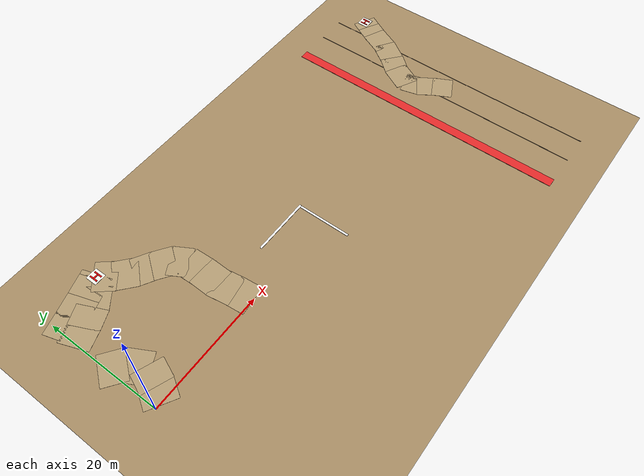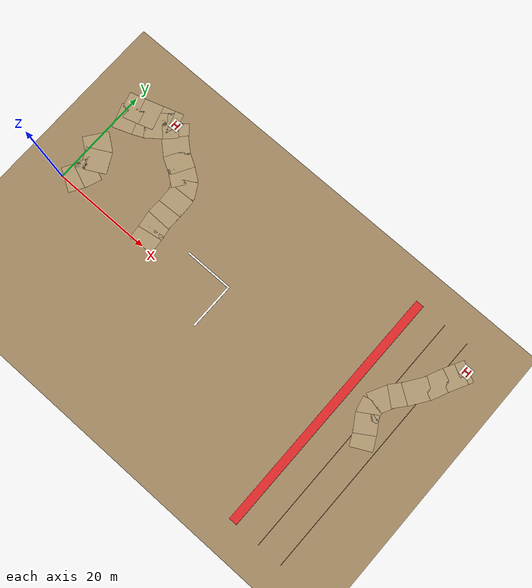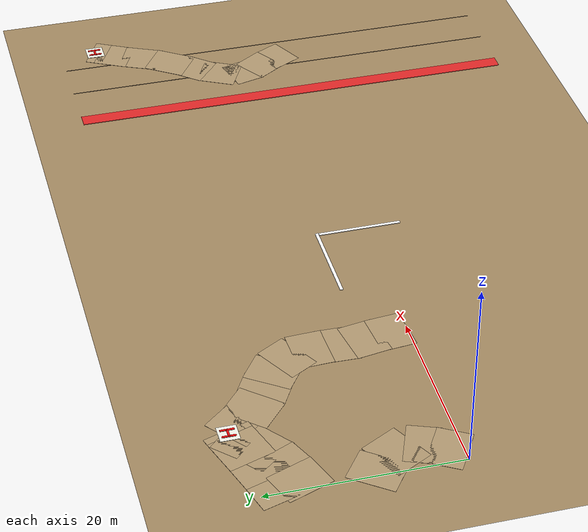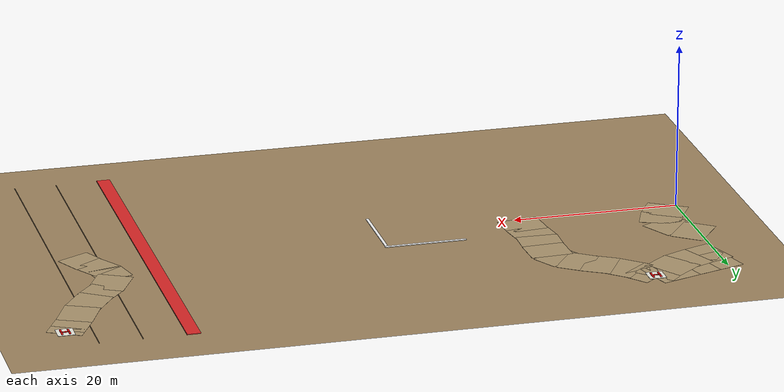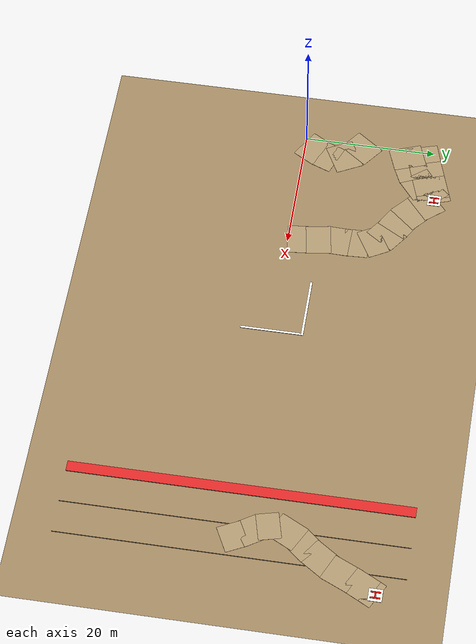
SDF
<sdf version="1.6">
 <world name="navitas_arena">
  <model name="ground_plane">
   <static>true</static>
   <link name="link">
    <collision name="collision">
     <geometry><plane><normal>0 0 1</normal><size>400 400</size></plane></geometry>
     <surface><friction><ode><mu>0.800</mu><mu2>0.800</mu2></ode></friction></surface>
    </collision>
    <visual name="visual">
     <cast_shadows>false</cast_shadows>
     <geometry><plane><normal>0 0 1</normal><size>400 400</size></plane></geometry>
     <material>
      <ambient>0.62 0.52 0.37 1</ambient>
      <diffuse>0.62 0.52 0.37 1</diffuse>
      <specular>0.04 0.04 0.04 1</specular>
     </material>
    </visual>
   </link>
  </model>
  <model name="landing_border_n">
   <static>true</static>
   <pose>32.000 4.700 0.080 0 0 0.000</pose>
   <link name="link">
    <collision name="col"><geometry><box><size>9.800 0.350 0.080</size></box></geometry></collision>
    <visual name="vis">
     <geometry><box><size>9.800 0.350 0.080</size></box></geometry>
     <material>
      <ambient>0.95 0.95 0.95 1</ambient>
      <diffuse>0.95 0.95 0.95 1</diffuse>
      <specular>0.04 0.04 0.04 1</specular>
     </material>
    </visual>
   </link>
  </model>
  <model name="landing_border_e">
   <static>true</static>
   <pose>36.700 0.000 0.080 0 0 0.000</pose>
   <link name="link">
    <collision name="col"><geometry><box><size>0.350 9.000 0.080</size></box></geometry></collision>
    <visual name="vis">
     <geometry><box><size>0.350 9.000 0.080</size></box></geometry>
     <material>
      <ambient>0.95 0.95 0.95 1</ambient>
      <diffuse>0.95 0.95 0.95 1</diffuse>
      <specular>0.04 0.04 0.04 1</specular>
     </material>
    </visual>
   </link>
  </model>
  <model name="road_orta_1_23">
   <static>true</static>
   <pose>0.905 18.411 0.040 0 0 0.291</pose>
   <link name="link">
    <collision name="col"><geometry><box><size>4.097 5.000 0.020</size></box></geometry></collision>
    <visual name="vis">
     <geometry><box><size>4.097 5.000 0.020</size></box></geometry>
     <material>
      <ambient>0.67 0.58 0.43 1</ambient>
      <diffuse>0.67 0.58 0.43 1</diffuse>
      <specular>0.04 0.04 0.04 1</specular>
     </material>
    </visual>
   </link>
  </model>
  <model name="road_orta_1_24">
   <static>true</static>
   <pose>3.800 19.305 0.040 0 0 0.308</pose>
   <link name="link">
    <collision name="col"><geometry><box><size>3.763 5.000 0.020</size></box></geometry></collision>
    <visual name="vis">
     <geometry><box><size>3.763 5.000 0.020</size></box></geometry>
     <material>
      <ambient>0.67 0.58 0.43 1</ambient>
      <diffuse>0.67 0.58 0.43 1</diffuse>
      <specular>0.04 0.04 0.04 1</specular>
     </material>
    </visual>
   </link>
  </model>
  <model name="road_orta_1_25">
   <static>true</static>
   <pose>6.735 20.255 0.040 0 0 0.317</pose>
   <link name="link">
    <collision name="col"><geometry><box><size>4.207 5.000 0.020</size></box></geometry></collision>
    <visual name="vis">
     <geometry><box><size>4.207 5.000 0.020</size></box></geometry>
     <material>
      <ambient>0.67 0.58 0.43 1</ambient>
      <diffuse>0.67 0.58 0.43 1</diffuse>
      <specular>0.04 0.04 0.04 1</specular>
     </material>
    </visual>
   </link>
  </model>
  <model name="road_orta_1_26">
   <static>true</static>
   <pose>8.666 20.885 0.040 0 0 0.309</pose>
   <link name="link">
    <collision name="col"><geometry><box><size>1.656 5.000 0.020</size></box></geometry></collision>
    <visual name="vis">
     <geometry><box><size>1.656 5.000 0.020</size></box></geometry>
     <material>
      <ambient>0.67 0.58 0.43 1</ambient>
      <diffuse>0.67 0.58 0.43 1</diffuse>
      <specular>0.04 0.04 0.04 1</specular>
     </material>
    </visual>
   </link>
  </model>
  <model name="road_orta_2_9">
   <static>true</static>
   <pose>1.823 1.333 0.040 0 0 1.031</pose>
   <link name="link">
    <collision name="col"><geometry><box><size>3.621 5.000 0.020</size></box></geometry></collision>
    <visual name="vis">
     <geometry><box><size>3.621 5.000 0.020</size></box></geometry>
     <material>
      <ambient>0.67 0.58 0.43 1</ambient>
      <diffuse>0.67 0.58 0.43 1</diffuse>
      <specular>0.04 0.04 0.04 1</specular>
     </material>
    </visual>
   </link>
  </model>
  <model name="road_orta_2_10">
   <static>true</static>
   <pose>2.977 3.667 0.040 0 0 1.199</pose>
   <link name="link">
    <collision name="col"><geometry><box><size>3.404 5.000 0.020</size></box></geometry></collision>
    <visual name="vis">
     <geometry><box><size>3.404 5.000 0.020</size></box></geometry>
     <material>
      <ambient>0.67 0.58 0.43 1</ambient>
      <diffuse>0.67 0.58 0.43 1</diffuse>
      <specular>0.04 0.04 0.04 1</specular>
     </material>
    </visual>
   </link>
  </model>
  <model name="road_orta_2_11">
   <static>true</static>
   <pose>2.650 6.321 0.040 0 0 2.054</pose>
   <link name="link">
    <collision name="col"><geometry><box><size>4.260 5.000 0.020</size></box></geometry></collision>
    <visual name="vis">
     <geometry><box><size>4.260 5.000 0.020</size></box></geometry>
     <material>
      <ambient>0.67 0.58 0.43 1</ambient>
      <diffuse>0.67 0.58 0.43 1</diffuse>
      <specular>0.04 0.04 0.04 1</specular>
     </material>
    </visual>
   </link>
  </model>
  <model name="road_orta_2_12">
   <static>true</static>
   <pose>0.633 8.732 0.040 0 0 2.500</pose>
   <link name="link">
    <collision name="col"><geometry><box><size>3.986 5.000 0.020</size></box></geometry></collision>
    <visual name="vis">
     <geometry><box><size>3.986 5.000 0.020</size></box></geometry>
     <material>
      <ambient>0.67 0.58 0.43 1</ambient>
      <diffuse>0.67 0.58 0.43 1</diffuse>
      <specular>0.04 0.04 0.04 1</specular>
     </material>
    </visual>
   </link>
  </model>
  <model name="road_orta_2_16">
   <static>true</static>
   <pose>1.315 15.986 0.040 0 0 0.349</pose>
   <link name="link">
    <collision name="col"><geometry><box><size>3.924 5.000 0.020</size></box></geometry></collision>
    <visual name="vis">
     <geometry><box><size>3.924 5.000 0.020</size></box></geometry>
     <material>
      <ambient>0.67 0.58 0.43 1</ambient>
      <diffuse>0.67 0.58 0.43 1</diffuse>
      <specular>0.04 0.04 0.04 1</specular>
     </material>
    </visual>
   </link>
  </model>
  <model name="road_orta_2_17">
   <static>true</static>
   <pose>3.850 17.002 0.040 0 0 0.420</pose>
   <link name="link">
    <collision name="col"><geometry><box><size>3.341 5.000 0.020</size></box></geometry></collision>
    <visual name="vis">
     <geometry><box><size>3.341 5.000 0.020</size></box></geometry>
     <material>
      <ambient>0.67 0.58 0.43 1</ambient>
      <diffuse>0.67 0.58 0.43 1</diffuse>
      <specular>0.04 0.04 0.04 1</specular>
     </material>
    </visual>
   </link>
  </model>
  <model name="road_orta_2_18">
   <static>true</static>
   <pose>6.253 18.516 0.040 0 0 0.667</pose>
   <link name="link">
    <collision name="col"><geometry><box><size>4.181 5.000 0.020</size></box></geometry></collision>
    <visual name="vis">
     <geometry><box><size>4.181 5.000 0.020</size></box></geometry>
     <material>
      <ambient>0.67 0.58 0.43 1</ambient>
      <diffuse>0.67 0.58 0.43 1</diffuse>
      <specular>0.04 0.04 0.04 1</specular>
     </material>
    </visual>
   </link>
  </model>
  <model name="road_orta_2_19">
   <static>true</static>
   <pose>8.283 20.266 0.040 0 0 0.780</pose>
   <link name="link">
    <collision name="col"><geometry><box><size>2.988 5.000 0.020</size></box></geometry></collision>
    <visual name="vis">
     <geometry><box><size>2.988 5.000 0.020</size></box></geometry>
     <material>
      <ambient>0.67 0.58 0.43 1</ambient>
      <diffuse>0.67 0.58 0.43 1</diffuse>
      <specular>0.04 0.04 0.04 1</specular>
     </material>
    </visual>
   </link>
  </model>
  <model name="road_orta_3_12">
   <static>true</static>
   <pose>19.454 1.800 0.040 0 0 1.664</pose>
   <link name="link">
    <collision name="col"><geometry><box><size>3.712 5.000 0.020</size></box></geometry></collision>
    <visual name="vis">
     <geometry><box><size>3.712 5.000 0.020</size></box></geometry>
     <material>
      <ambient>0.67 0.58 0.43 1</ambient>
      <diffuse>0.67 0.58 0.43 1</diffuse>
      <specular>0.04 0.04 0.04 1</specular>
     </material>
    </visual>
   </link>
  </model>
  <model name="road_orta_3_13">
   <static>true</static>
   <pose>19.097 4.600 0.040 0 0 1.730</pose>
   <link name="link">
    <collision name="col"><geometry><box><size>3.736 5.000 0.020</size></box></geometry></collision>
    <visual name="vis">
     <geometry><box><size>3.736 5.000 0.020</size></box></geometry>
     <material>
      <ambient>0.67 0.58 0.43 1</ambient>
      <diffuse>0.67 0.58 0.43 1</diffuse>
      <specular>0.04 0.04 0.04 1</specular>
     </material>
    </visual>
   </link>
  </model>
  <model name="road_orta_3_14">
   <static>true</static>
   <pose>18.908 7.460 0.040 0 0 1.546</pose>
   <link name="link">
    <collision name="col"><geometry><box><size>3.821 5.000 0.020</size></box></geometry></collision>
    <visual name="vis">
     <geometry><box><size>3.821 5.000 0.020</size></box></geometry>
     <material>
      <ambient>0.67 0.58 0.43 1</ambient>
      <diffuse>0.67 0.58 0.43 1</diffuse>
      <specular>0.04 0.04 0.04 1</specular>
     </material>
    </visual>
   </link>
  </model>
  <model name="road_orta_3_15">
   <static>true</static>
   <pose>18.885 10.340 0.040 0 0 1.612</pose>
   <link name="link">
    <collision name="col"><geometry><box><size>3.742 5.000 0.020</size></box></geometry></collision>
    <visual name="vis">
     <geometry><box><size>3.742 5.000 0.020</size></box></geometry>
     <material>
      <ambient>0.67 0.58 0.43 1</ambient>
      <diffuse>0.67 0.58 0.43 1</diffuse>
      <specular>0.04 0.04 0.04 1</specular>
     </material>
    </visual>
   </link>
  </model>
  <model name="road_orta_3_16">
   <static>true</static>
   <pose>18.223 12.833 0.040 0 0 2.083</pose>
   <link name="link">
    <collision name="col"><geometry><box><size>3.362 5.000 0.020</size></box></geometry></collision>
    <visual name="vis">
     <geometry><box><size>3.362 5.000 0.020</size></box></geometry>
     <material>
      <ambient>0.67 0.58 0.43 1</ambient>
      <diffuse>0.67 0.58 0.43 1</diffuse>
      <specular>0.04 0.04 0.04 1</specular>
     </material>
    </visual>
   </link>
  </model>
  <model name="road_orta_3_17">
   <static>true</static>
   <pose>16.523 14.688 0.040 0 0 2.523</pose>
   <link name="link">
    <collision name="col"><geometry><box><size>3.594 5.000 0.020</size></box></geometry></collision>
    <visual name="vis">
     <geometry><box><size>3.594 5.000 0.020</size></box></geometry>
     <material>
      <ambient>0.67 0.58 0.43 1</ambient>
      <diffuse>0.67 0.58 0.43 1</diffuse>
      <specular>0.04 0.04 0.04 1</specular>
     </material>
    </visual>
   </link>
  </model>
  <model name="road_orta_3_18">
   <static>true</static>
   <pose>14.255 16.153 0.040 0 0 2.613</pose>
   <link name="link">
    <collision name="col"><geometry><box><size>3.611 5.000 0.020</size></box></geometry></collision>
    <visual name="vis">
     <geometry><box><size>3.611 5.000 0.020</size></box></geometry>
     <material>
      <ambient>0.67 0.58 0.43 1</ambient>
      <diffuse>0.67 0.58 0.43 1</diffuse>
      <specular>0.04 0.04 0.04 1</specular>
     </material>
    </visual>
   </link>
  </model>
  <model name="road_orta_3_19">
   <static>true</static>
   <pose>11.930 17.854 0.040 0 0 2.420</pose>
   <link name="link">
    <collision name="col"><geometry><box><size>3.978 5.000 0.020</size></box></geometry></collision>
    <visual name="vis">
     <geometry><box><size>3.978 5.000 0.020</size></box></geometry>
     <material>
      <ambient>0.67 0.58 0.43 1</ambient>
      <diffuse>0.67 0.58 0.43 1</diffuse>
      <specular>0.04 0.04 0.04 1</specular>
     </material>
    </visual>
   </link>
  </model>
  <model name="road_orta_3_20">
   <static>true</static>
   <pose>9.900 19.935 0.040 0 0 2.259</pose>
   <link name="link">
    <collision name="col"><geometry><box><size>3.656 5.000 0.020</size></box></geometry></collision>
    <visual name="vis">
     <geometry><box><size>3.656 5.000 0.020</size></box></geometry>
     <material>
      <ambient>0.67 0.58 0.43 1</ambient>
      <diffuse>0.67 0.58 0.43 1</diffuse>
      <specular>0.04 0.04 0.04 1</specular>
     </material>
    </visual>
   </link>
  </model>
  <model name="hbpad_orta">
   <static>true</static>
   <pose>9.026 21.000 0.070 0 0 0.000</pose>
   <link name="link">
    <collision name="col"><geometry><box><size>2.000 2.000 0.040</size></box></geometry></collision>
    <visual name="vis">
     <geometry><box><size>2.000 2.000 0.040</size></box></geometry>
     <material>
      <ambient>0.92 0.92 0.88 1</ambient>
      <diffuse>0.92 0.92 0.88 1</diffuse>
      <specular>0.04 0.04 0.04 1</specular>
     </material>
    </visual>
   </link>
  </model>
  <model name="H_orta_l">
   <static>true</static>
   <pose>8.576 21.000 0.100 0 0 0.000</pose>
   <link name="link">
    <collision name="col"><geometry><box><size>0.220 1.450 0.080</size></box></geometry></collision>
    <visual name="vis">
     <geometry><box><size>0.220 1.450 0.080</size></box></geometry>
     <material>
      <ambient>0.90 0.02 0.02 1</ambient>
      <diffuse>0.90 0.02 0.02 1</diffuse>
      <specular>0.04 0.04 0.04 1</specular>
     </material>
    </visual>
   </link>
  </model>
  <model name="H_orta_r">
   <static>true</static>
   <pose>9.476 21.000 0.100 0 0 0.000</pose>
   <link name="link">
    <collision name="col"><geometry><box><size>0.220 1.450 0.080</size></box></geometry></collision>
    <visual name="vis">
     <geometry><box><size>0.220 1.450 0.080</size></box></geometry>
     <material>
      <ambient>0.90 0.02 0.02 1</ambient>
      <diffuse>0.90 0.02 0.02 1</diffuse>
      <specular>0.04 0.04 0.04 1</specular>
     </material>
    </visual>
   </link>
  </model>
  <model name="H_orta_b">
   <static>true</static>
   <pose>9.026 21.000 0.100 0 0 0.000</pose>
   <link name="link">
    <collision name="col"><geometry><box><size>1.100 0.220 0.080</size></box></geometry></collision>
    <visual name="vis">
     <geometry><box><size>1.100 0.220 0.080</size></box></geometry>
     <material>
      <ambient>0.90 0.02 0.02 1</ambient>
      <diffuse>0.90 0.02 0.02 1</diffuse>
      <specular>0.04 0.04 0.04 1</specular>
     </material>
    </visual>
   </link>
  </model>
  <model name="grid_zor_v0">
   <static>true</static>
   <pose>65.000 0.000 0.015 0 0 0.000</pose>
   <link name="link">
    <collision name="col"><geometry><box><size>0.100 50.000 0.006</size></box></geometry></collision>
    <visual name="vis">
     <geometry><box><size>0.100 50.000 0.006</size></box></geometry>
     <material>
      <ambient>0.30 0.24 0.17 1</ambient>
      <diffuse>0.30 0.24 0.17 1</diffuse>
      <specular>0.04 0.04 0.04 1</specular>
     </material>
    </visual>
   </link>
  </model>
  <model name="grid_zor_v1">
   <static>true</static>
   <pose>70.000 0.000 0.015 0 0 0.000</pose>
   <link name="link">
    <collision name="col"><geometry><box><size>0.100 50.000 0.006</size></box></geometry></collision>
    <visual name="vis">
     <geometry><box><size>0.100 50.000 0.006</size></box></geometry>
     <material>
      <ambient>0.30 0.24 0.17 1</ambient>
      <diffuse>0.30 0.24 0.17 1</diffuse>
      <specular>0.04 0.04 0.04 1</specular>
     </material>
    </visual>
   </link>
  </model>
  <model name="grid_zor_v2">
   <static>true</static>
   <pose>75.000 0.000 0.015 0 0 0.000</pose>
   <link name="link">
    <collision name="col"><geometry><box><size>0.100 50.000 0.006</size></box></geometry></collision>
    <visual name="vis">
     <geometry><box><size>0.100 50.000 0.006</size></box></geometry>
     <material>
      <ambient>0.30 0.24 0.17 1</ambient>
      <diffuse>0.30 0.24 0.17 1</diffuse>
      <specular>0.04 0.04 0.04 1</specular>
     </material>
    </visual>
   </link>
  </model>
  <model name="brd_zor_W">
   <static>true</static>
   <pose>64.200 0.000 0.040 0 0 0.000</pose>
   <link name="link">
    <collision name="col"><geometry><box><size>1.600 50.000 0.080</size></box></geometry></collision>
    <visual name="vis">
     <geometry><box><size>1.600 50.000 0.080</size></box></geometry>
     <material>
      <ambient>0.85 0.15 0.15 1</ambient>
      <diffuse>0.85 0.15 0.15 1</diffuse>
      <specular>0.04 0.04 0.04 1</specular>
     </material>
    </visual>
   </link>
  </model>
  <model name="road_zor_1_12">
   <static>true</static>
   <pose>71.950 0.167 0.040 0 0 2.041</pose>
   <link name="link">
    <collision name="col"><geometry><box><size>3.517 4.200 0.020</size></box></geometry></collision>
    <visual name="vis">
     <geometry><box><size>3.517 4.200 0.020</size></box></geometry>
     <material>
      <ambient>0.67 0.58 0.43 1</ambient>
      <diffuse>0.67 0.58 0.43 1</diffuse>
      <specular>0.04 0.04 0.04 1</specular>
     </material>
    </visual>
   </link>
  </model>
  <model name="road_zor_1_13">
   <static>true</static>
   <pose>70.612 2.500 0.040 0 0 2.140</pose>
   <link name="link">
    <collision name="col"><geometry><box><size>3.670 4.200 0.020</size></box></geometry></collision>
    <visual name="vis">
     <geometry><box><size>3.670 4.200 0.020</size></box></geometry>
     <material>
      <ambient>0.67 0.58 0.43 1</ambient>
      <diffuse>0.67 0.58 0.43 1</diffuse>
      <specular>0.04 0.04 0.04 1</specular>
     </material>
    </visual>
   </link>
  </model>
  <model name="road_zor_1_14">
   <static>true</static>
   <pose>69.567 4.833 0.040 0 0 1.821</pose>
   <link name="link">
    <collision name="col"><geometry><box><size>3.309 4.200 0.020</size></box></geometry></collision>
    <visual name="vis">
     <geometry><box><size>3.309 4.200 0.020</size></box></geometry>
     <material>
      <ambient>0.67 0.58 0.43 1</ambient>
      <diffuse>0.67 0.58 0.43 1</diffuse>
      <specular>0.04 0.04 0.04 1</specular>
     </material>
    </visual>
   </link>
  </model>
  <model name="road_zor_1_15">
   <static>true</static>
   <pose>70.080 7.566 0.040 0 0 1.093</pose>
   <link name="link">
    <collision name="col"><geometry><box><size>4.427 4.200 0.020</size></box></geometry></collision>
    <visual name="vis">
     <geometry><box><size>4.427 4.200 0.020</size></box></geometry>
     <material>
      <ambient>0.67 0.58 0.43 1</ambient>
      <diffuse>0.67 0.58 0.43 1</diffuse>
      <specular>0.04 0.04 0.04 1</specular>
     </material>
    </visual>
   </link>
  </model>
  <model name="road_zor_1_16">
   <static>true</static>
   <pose>71.765 10.157 0.040 0 0 0.865</pose>
   <link name="link">
    <collision name="col"><geometry><box><size>3.595 4.200 0.020</size></box></geometry></collision>
    <visual name="vis">
     <geometry><box><size>3.595 4.200 0.020</size></box></geometry>
     <material>
      <ambient>0.67 0.58 0.43 1</ambient>
      <diffuse>0.67 0.58 0.43 1</diffuse>
      <specular>0.04 0.04 0.04 1</specular>
     </material>
    </visual>
   </link>
  </model>
  <model name="road_zor_1_17">
   <static>true</static>
   <pose>73.715 12.753 0.040 0 0 0.971</pose>
   <link name="link">
    <collision name="col"><geometry><box><size>4.708 4.200 0.020</size></box></geometry></collision>
    <visual name="vis">
     <geometry><box><size>4.708 4.200 0.020</size></box></geometry>
     <material>
      <ambient>0.67 0.58 0.43 1</ambient>
      <diffuse>0.67 0.58 0.43 1</diffuse>
      <specular>0.04 0.04 0.04 1</specular>
     </material>
    </visual>
   </link>
  </model>
  <model name="road_zor_1_18">
   <static>true</static>
   <pose>75.516 15.912 0.040 0 0 1.142</pose>
   <link name="link">
    <collision name="col"><geometry><box><size>4.392 4.200 0.020</size></box></geometry></collision>
    <visual name="vis">
     <geometry><box><size>4.392 4.200 0.020</size></box></geometry>
     <material>
      <ambient>0.67 0.58 0.43 1</ambient>
      <diffuse>0.67 0.58 0.43 1</diffuse>
      <specular>0.04 0.04 0.04 1</specular>
     </material>
    </visual>
   </link>
  </model>
  <model name="road_zor_1_19">
   <static>true</static>
   <pose>76.927 18.815 0.040 0 0 1.090</pose>
   <link name="link">
    <collision name="col"><geometry><box><size>3.866 4.200 0.020</size></box></geometry></collision>
    <visual name="vis">
     <geometry><box><size>3.866 4.200 0.020</size></box></geometry>
     <material>
      <ambient>0.67 0.58 0.43 1</ambient>
      <diffuse>0.67 0.58 0.43 1</diffuse>
      <specular>0.04 0.04 0.04 1</specular>
     </material>
    </visual>
   </link>
  </model>
  <model name="road_zor_1_20">
   <static>true</static>
   <pose>77.845 20.565 0.040 0 0 1.083</pose>
   <link name="link">
    <collision name="col"><geometry><box><size>1.886 4.200 0.020</size></box></geometry></collision>
    <visual name="vis">
     <geometry><box><size>1.886 4.200 0.020</size></box></geometry>
     <material>
      <ambient>0.67 0.58 0.43 1</ambient>
      <diffuse>0.67 0.58 0.43 1</diffuse>
      <specular>0.04 0.04 0.04 1</specular>
     </material>
    </visual>
   </link>
  </model>
  <model name="hbpad_zor">
   <static>true</static>
   <pose>78.076 21.000 0.070 0 0 0.000</pose>
   <link name="link">
    <collision name="col"><geometry><box><size>2.000 2.000 0.040</size></box></geometry></collision>
    <visual name="vis">
     <geometry><box><size>2.000 2.000 0.040</size></box></geometry>
     <material>
      <ambient>0.92 0.92 0.88 1</ambient>
      <diffuse>0.92 0.92 0.88 1</diffuse>
      <specular>0.04 0.04 0.04 1</specular>
     </material>
    </visual>
   </link>
  </model>
  <model name="H_zor_l">
   <static>true</static>
   <pose>77.626 21.000 0.100 0 0 0.000</pose>
   <link name="link">
    <collision name="col"><geometry><box><size>0.220 1.450 0.080</size></box></geometry></collision>
    <visual name="vis">
     <geometry><box><size>0.220 1.450 0.080</size></box></geometry>
     <material>
      <ambient>0.90 0.02 0.02 1</ambient>
      <diffuse>0.90 0.02 0.02 1</diffuse>
      <specular>0.04 0.04 0.04 1</specular>
     </material>
    </visual>
   </link>
  </model>
  <model name="H_zor_r">
   <static>true</static>
   <pose>78.526 21.000 0.100 0 0 0.000</pose>
   <link name="link">
    <collision name="col"><geometry><box><size>0.220 1.450 0.080</size></box></geometry></collision>
    <visual name="vis">
     <geometry><box><size>0.220 1.450 0.080</size></box></geometry>
     <material>
      <ambient>0.90 0.02 0.02 1</ambient>
      <diffuse>0.90 0.02 0.02 1</diffuse>
      <specular>0.04 0.04 0.04 1</specular>
     </material>
    </visual>
   </link>
  </model>
  <model name="H_zor_b">
   <static>true</static>
   <pose>78.076 21.000 0.100 0 0 0.000</pose>
   <link name="link">
    <collision name="col"><geometry><box><size>1.100 0.220 0.080</size></box></geometry></collision>
    <visual name="vis">
     <geometry><box><size>1.100 0.220 0.080</size></box></geometry>
     <material>
      <ambient>0.90 0.02 0.02 1</ambient>
      <diffuse>0.90 0.02 0.02 1</diffuse>
      <specular>0.04 0.04 0.04 1</specular>
     </material>
    </visual>
   </link>
  </model>
  <model name="rec_side_north">
   <static>true</static>
   <pose>0.000 118.000 78.000 0.0000 0.9500 -1.5708</pose>
   <link name="link">
    <sensor name="cam" type="camera">
     <camera>
      <horizontal_fov>1.350</horizontal_fov>
      <image><width>1280</width><height>720</height><format>R8G8B8</format></image>
      <clip><near>0.1</near><far>500</far></clip>
      <save enabled="true"><path>/tmp/frames_side_north</path></save>
     </camera>
     <always_on>1</always_on>
     <update_rate>6</update_rate>
    </sensor>
   </link>
  </model>
 </world>
</sdf>
